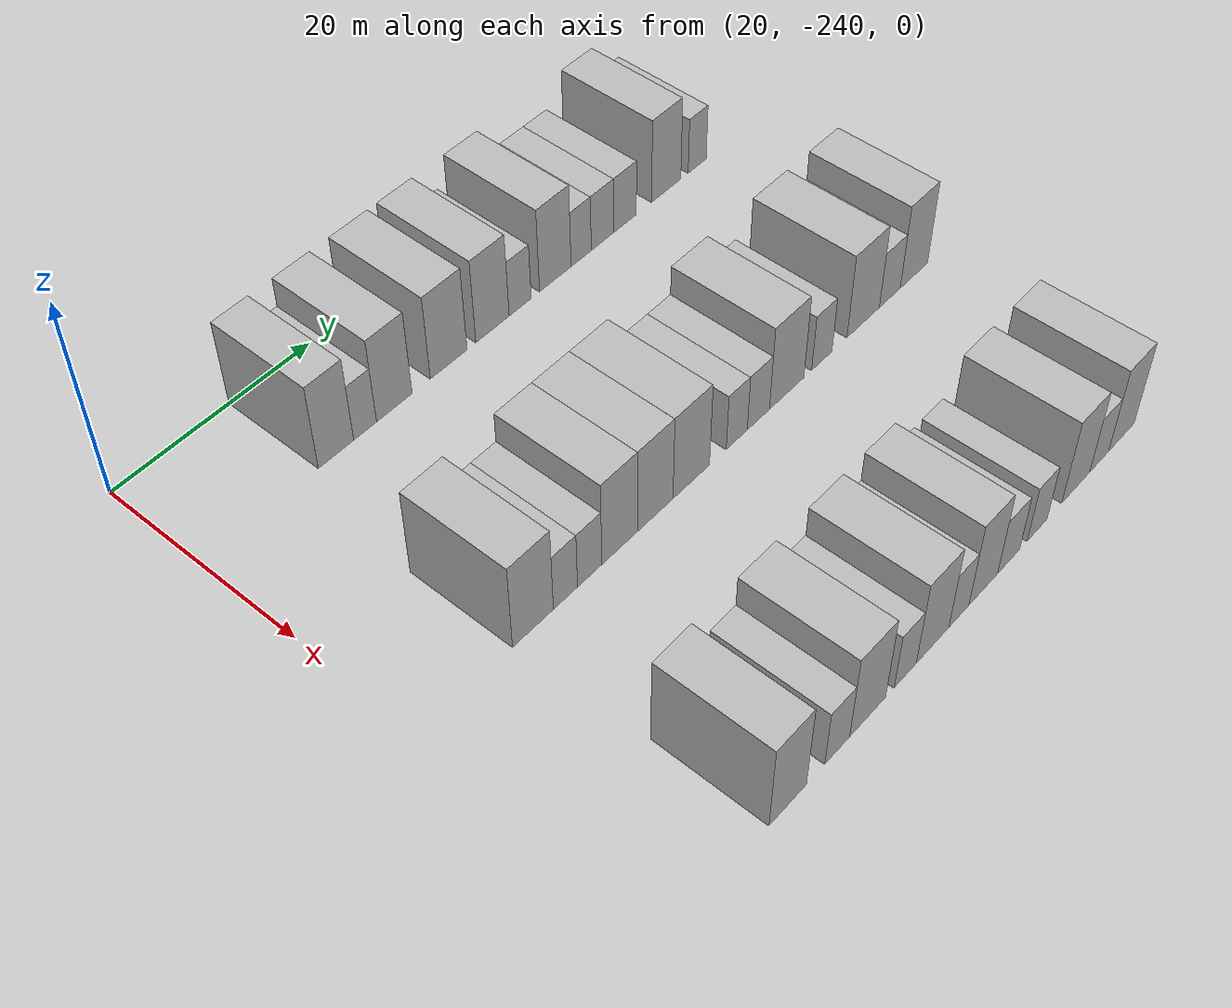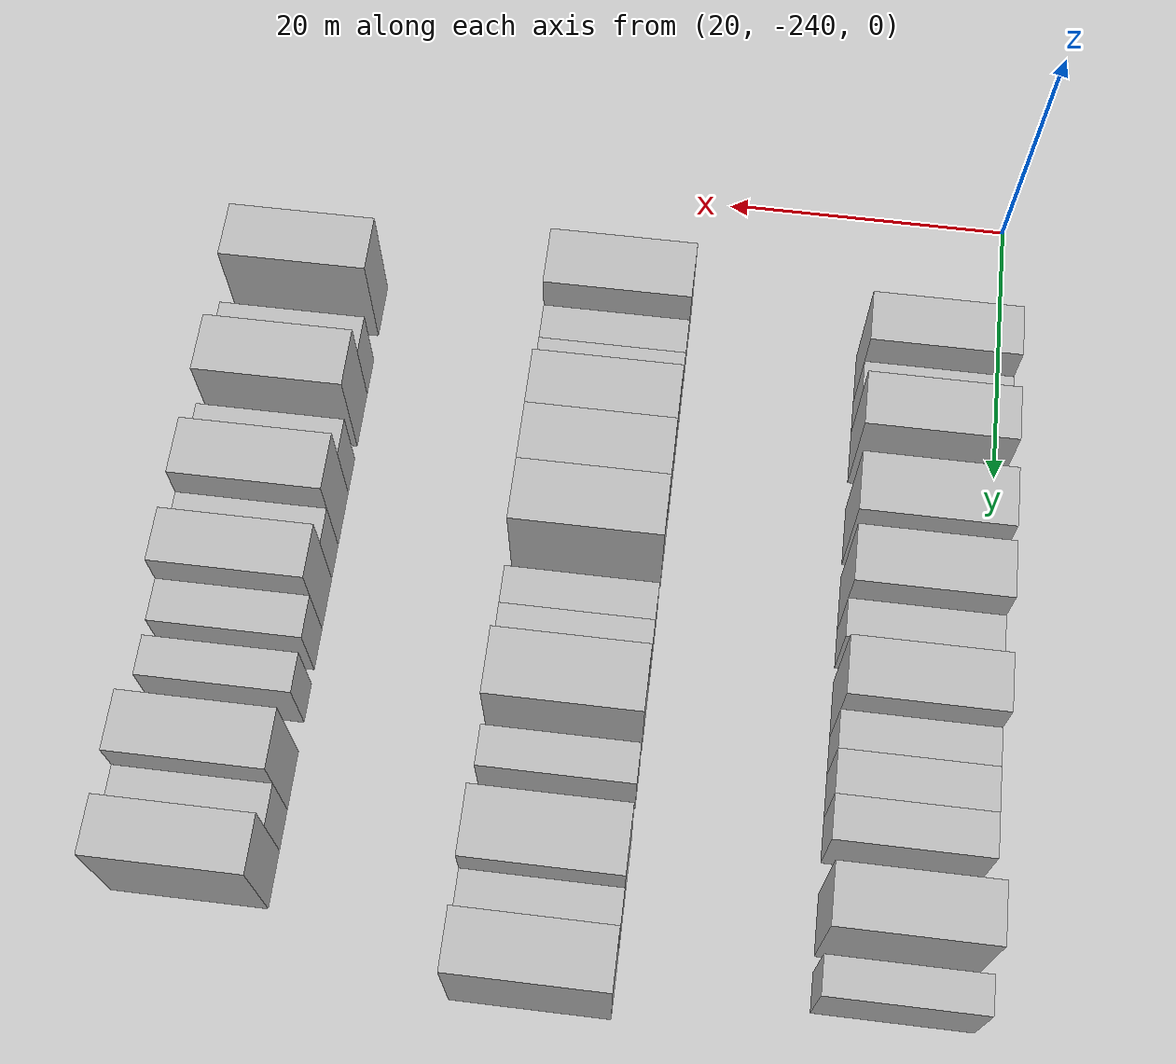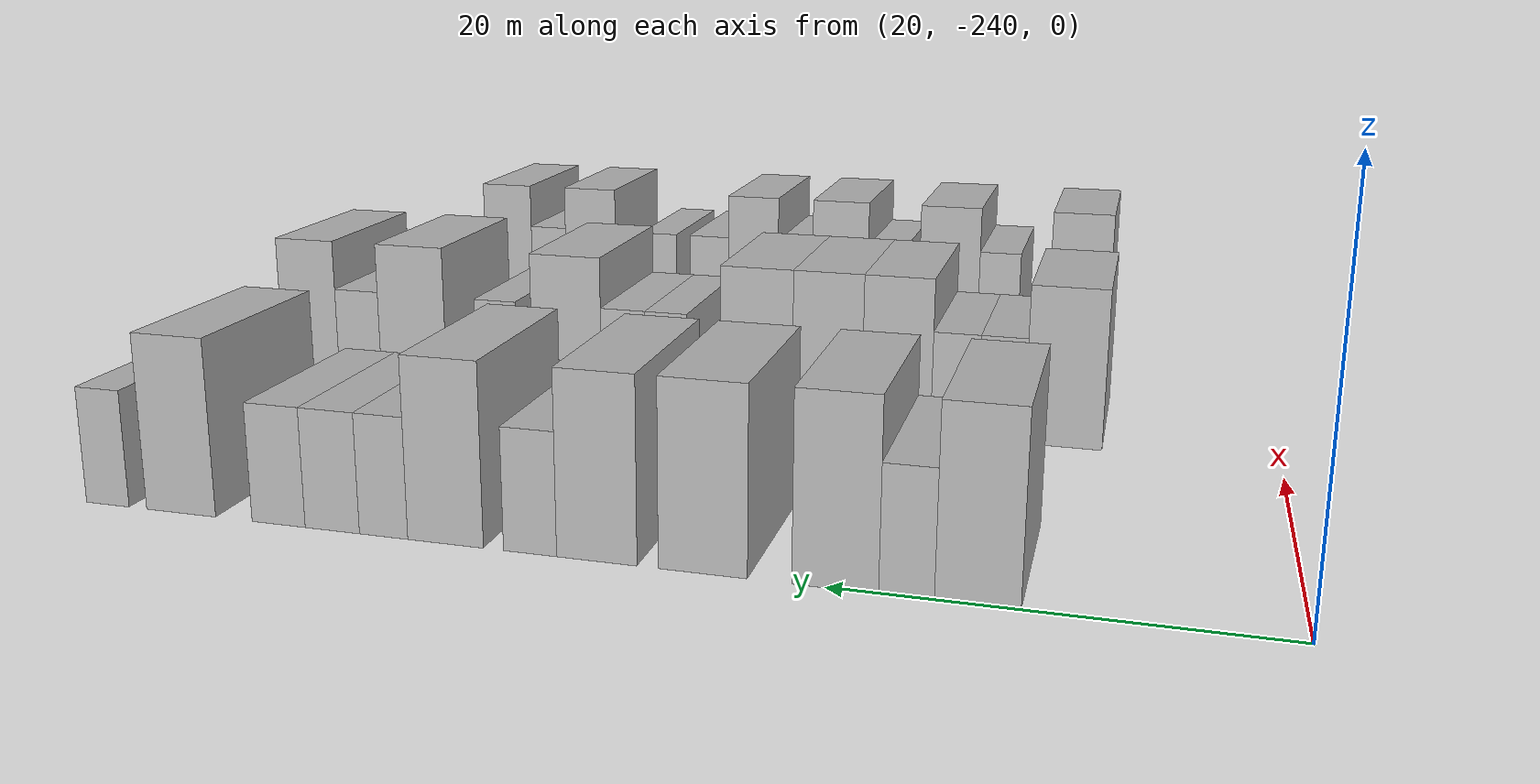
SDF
<sdf version="1.6">
 <world name="default">
  <model name="building_39">
   <static>1</static>
   <pose>25.0000 -226.5575 0 0.000000 0.000000 0.000000</pose>
   <link name="link">
    <pose>0 0 4.50 0 0 0</pose>
    <collision name="collision"><geometry><box><size>10.0000 3.6618 9.0000</size></box></geometry></collision>
    <visual name="visual">
     <cast_shadows>0</cast_shadows>
     <geometry><box><size>10.0000 3.6618 9.0000</size></box></geometry>
     <material>
      <script>
       <uri>model://HANNAS_wall/materials/scripts</uri>
       <uri>model://HANNAS_wall/materials/textures</uri>
       <name>vrc/HANNAS_wall</name>
      </script>
     </material>
    </visual>
   </link>
  </model>
  <model name="building_40">
   <static>1</static>
   <pose>25.0000 -223.5219 0 0.000000 0.000000 0.000000</pose>
   <link name="link">
    <pose>0 0 3.00 0 0 0</pose>
    <collision name="collision"><geometry><box><size>10.0000 2.4094 6.0000</size></box></geometry></collision>
    <visual name="visual">
     <cast_shadows>0</cast_shadows>
     <geometry><box><size>10.0000 2.4094 6.0000</size></box></geometry>
     <material>
      <script>
       <uri>model://HANNAS_wall/materials/scripts</uri>
       <uri>model://HANNAS_wall/materials/textures</uri>
       <name>vrc/HANNAS_wall</name>
      </script>
     </material>
    </visual>
   </link>
  </model>
  <model name="building_41">
   <static>1</static>
   <pose>25.0000 -220.3961 0 0.000000 0.000000 0.000000</pose>
   <link name="link">
    <pose>0 0 4.50 0 0 0</pose>
    <collision name="collision"><geometry><box><size>10.0000 3.8420 9.0000</size></box></geometry></collision>
    <visual name="visual">
     <cast_shadows>0</cast_shadows>
     <geometry><box><size>10.0000 3.8420 9.0000</size></box></geometry>
     <material>
      <script>
       <uri>model://HANNAS_wall/materials/scripts</uri>
       <uri>model://HANNAS_wall/materials/textures</uri>
       <name>vrc/HANNAS_wall</name>
      </script>
     </material>
    </visual>
   </link>
  </model>
  <model name="building_42">
   <static>1</static>
   <pose>25.0000 -214.4099 0 0.000000 0.000000 0.000000</pose>
   <link name="link">
    <pose>0 0 4.50 0 0 0</pose>
    <collision name="collision"><geometry><box><size>10.0000 4.1304 9.0000</size></box></geometry></collision>
    <visual name="visual">
     <cast_shadows>0</cast_shadows>
     <geometry><box><size>10.0000 4.1304 9.0000</size></box></geometry>
     <material>
      <script>
       <uri>model://HANNAS_wall/materials/scripts</uri>
       <uri>model://HANNAS_wall/materials/textures</uri>
       <name>vrc/HANNAS_wall</name>
      </script>
     </material>
    </visual>
   </link>
  </model>
  <model name="building_43">
   <static>1</static>
   <pose>25.0000 -209.4116 0 0.000000 0.000000 0.000000</pose>
   <link name="link">
    <pose>0 0 4.50 0 0 0</pose>
    <collision name="collision"><geometry><box><size>10.0000 3.8663 9.0000</size></box></geometry></collision>
    <visual name="visual">
     <cast_shadows>0</cast_shadows>
     <geometry><box><size>10.0000 3.8663 9.0000</size></box></geometry>
     <material>
      <script>
       <uri>model://HANNAS_wall/materials/scripts</uri>
       <uri>model://HANNAS_wall/materials/textures</uri>
       <name>vrc/HANNAS_wall</name>
      </script>
     </material>
    </visual>
   </link>
  </model>
  <model name="building_44">
   <static>1</static>
   <pose>25.0000 -206.1708 0 0.000000 0.000000 0.000000</pose>
   <link name="link">
    <pose>0 0 3.00 0 0 0</pose>
    <collision name="collision"><geometry><box><size>10.0000 2.6153 6.0000</size></box></geometry></collision>
    <visual name="visual">
     <cast_shadows>0</cast_shadows>
     <geometry><box><size>10.0000 2.6153 6.0000</size></box></geometry>
     <material>
      <script>
       <uri>model://HANNAS_wall/materials/scripts</uri>
       <uri>model://HANNAS_wall/materials/textures</uri>
       <name>vrc/HANNAS_wall</name>
      </script>
     </material>
    </visual>
   </link>
  </model>
  <model name="building_45">
   <static>1</static>
   <pose>25.0000 -201.9423 0 0.000000 0.000000 0.000000</pose>
   <link name="link">
    <pose>0 0 4.50 0 0 0</pose>
    <collision name="collision"><geometry><box><size>10.0000 3.8416 9.0000</size></box></geometry></collision>
    <visual name="visual">
     <cast_shadows>0</cast_shadows>
     <geometry><box><size>10.0000 3.8416 9.0000</size></box></geometry>
     <material>
      <script>
       <uri>model://HANNAS_wall/materials/scripts</uri>
       <uri>model://HANNAS_wall/materials/textures</uri>
       <name>vrc/HANNAS_wall</name>
      </script>
     </material>
    </visual>
   </link>
  </model>
  <model name="building_46">
   <static>1</static>
   <pose>25.0000 -198.7667 0 0.000000 0.000000 0.000000</pose>
   <link name="link">
    <pose>0 0 3.00 0 0 0</pose>
    <collision name="collision"><geometry><box><size>10.0000 2.5095 6.0000</size></box></geometry></collision>
    <visual name="visual">
     <cast_shadows>0</cast_shadows>
     <geometry><box><size>10.0000 2.5095 6.0000</size></box></geometry>
     <material>
      <script>
       <uri>model://HANNAS_wall/materials/scripts</uri>
       <uri>model://HANNAS_wall/materials/textures</uri>
       <name>vrc/HANNAS_wall</name>
      </script>
     </material>
    </visual>
   </link>
  </model>
  <model name="building_47">
   <static>1</static>
   <pose>25.0000 -196.0761 0 0.000000 0.000000 0.000000</pose>
   <link name="link">
    <pose>0 0 3.00 0 0 0</pose>
    <collision name="collision"><geometry><box><size>10.0000 2.8717 6.0000</size></box></geometry></collision>
    <visual name="visual">
     <cast_shadows>0</cast_shadows>
     <geometry><box><size>10.0000 2.8717 6.0000</size></box></geometry>
     <material>
      <script>
       <uri>model://HANNAS_wall/materials/scripts</uri>
       <uri>model://HANNAS_wall/materials/textures</uri>
       <name>vrc/HANNAS_wall</name>
      </script>
     </material>
    </visual>
   </link>
  </model>
  <model name="building_48">
   <static>1</static>
   <pose>25.0000 -193.2054 0 0.000000 0.000000 0.000000</pose>
   <link name="link">
    <pose>0 0 3.00 0 0 0</pose>
    <collision name="collision"><geometry><box><size>10.0000 2.8697 6.0000</size></box></geometry></collision>
    <visual name="visual">
     <cast_shadows>0</cast_shadows>
     <geometry><box><size>10.0000 2.8697 6.0000</size></box></geometry>
     <material>
      <script>
       <uri>model://HANNAS_wall/materials/scripts</uri>
       <uri>model://HANNAS_wall/materials/textures</uri>
       <name>vrc/HANNAS_wall</name>
      </script>
     </material>
    </visual>
   </link>
  </model>
  <model name="building_49">
   <static>1</static>
   <pose>25.0000 -187.8356 0 0.000000 0.000000 0.000000</pose>
   <link name="link">
    <pose>0 0 4.50 0 0 0</pose>
    <collision name="collision"><geometry><box><size>10.0000 3.8700 9.0000</size></box></geometry></collision>
    <visual name="visual">
     <cast_shadows>0</cast_shadows>
     <geometry><box><size>10.0000 3.8700 9.0000</size></box></geometry>
     <material>
      <script>
       <uri>model://HANNAS_wall/materials/scripts</uri>
       <uri>model://HANNAS_wall/materials/textures</uri>
       <name>vrc/HANNAS_wall</name>
      </script>
     </material>
    </visual>
   </link>
  </model>
  <model name="building_50">
   <static>1</static>
   <pose>25.0000 -183.6765 0 0.000000 0.000000 0.000000</pose>
   <link name="link">
    <pose>0 0 3.00 0 0 0</pose>
    <collision name="collision"><geometry><box><size>10.0000 2.4484 6.0000</size></box></geometry></collision>
    <visual name="visual">
     <cast_shadows>0</cast_shadows>
     <geometry><box><size>10.0000 2.4484 6.0000</size></box></geometry>
     <material>
      <script>
       <uri>model://HANNAS_wall/materials/scripts</uri>
       <uri>model://HANNAS_wall/materials/textures</uri>
       <name>vrc/HANNAS_wall</name>
      </script>
     </material>
    </visual>
   </link>
  </model>
  <model name="building_233">
   <static>1</static>
   <pose>47.0000 -228.6042 0 0.000000 0.000000 0.000000</pose>
   <link name="link">
    <pose>0 0 4.50 0 0 0</pose>
    <collision name="collision"><geometry><box><size>10.0000 4.2199 9.0000</size></box></geometry></collision>
    <visual name="visual">
     <cast_shadows>0</cast_shadows>
     <geometry><box><size>10.0000 4.2199 9.0000</size></box></geometry>
     <material>
      <script>
       <uri>model://HANNAS_wall/materials/scripts</uri>
       <uri>model://HANNAS_wall/materials/textures</uri>
       <name>vrc/HANNAS_wall</name>
      </script>
     </material>
    </visual>
   </link>
  </model>
  <model name="building_234">
   <static>1</static>
   <pose>47.0000 -225.2168 0 0.000000 0.000000 0.000000</pose>
   <link name="link">
    <pose>0 0 3.00 0 0 0</pose>
    <collision name="collision"><geometry><box><size>10.0000 2.5550 6.0000</size></box></geometry></collision>
    <visual name="visual">
     <cast_shadows>0</cast_shadows>
     <geometry><box><size>10.0000 2.5550 6.0000</size></box></geometry>
     <material>
      <script>
       <uri>model://HANNAS_wall/materials/scripts</uri>
       <uri>model://HANNAS_wall/materials/textures</uri>
       <name>vrc/HANNAS_wall</name>
      </script>
     </material>
    </visual>
   </link>
  </model>
  <model name="building_235">
   <static>1</static>
   <pose>47.0000 -222.6309 0 0.000000 0.000000 0.000000</pose>
   <link name="link">
    <pose>0 0 3.00 0 0 0</pose>
    <collision name="collision"><geometry><box><size>10.0000 2.6168 6.0000</size></box></geometry></collision>
    <visual name="visual">
     <cast_shadows>0</cast_shadows>
     <geometry><box><size>10.0000 2.6168 6.0000</size></box></geometry>
     <material>
      <script>
       <uri>model://HANNAS_wall/materials/scripts</uri>
       <uri>model://HANNAS_wall/materials/textures</uri>
       <name>vrc/HANNAS_wall</name>
      </script>
     </material>
    </visual>
   </link>
  </model>
  <model name="building_236">
   <static>1</static>
   <pose>47.0000 -219.3566 0 0.000000 0.000000 0.000000</pose>
   <link name="link">
    <pose>0 0 4.50 0 0 0</pose>
    <collision name="collision"><geometry><box><size>10.0000 3.9318 9.0000</size></box></geometry></collision>
    <visual name="visual">
     <cast_shadows>0</cast_shadows>
     <geometry><box><size>10.0000 3.9318 9.0000</size></box></geometry>
     <material>
      <script>
       <uri>model://HANNAS_wall/materials/scripts</uri>
       <uri>model://HANNAS_wall/materials/textures</uri>
       <name>vrc/HANNAS_wall</name>
      </script>
     </material>
    </visual>
   </link>
  </model>
  <model name="building_237">
   <static>1</static>
   <pose>47.0000 -215.3696 0 0.000000 0.000000 0.000000</pose>
   <link name="link">
    <pose>0 0 4.50 0 0 0</pose>
    <collision name="collision"><geometry><box><size>10.0000 4.0422 9.0000</size></box></geometry></collision>
    <visual name="visual">
     <cast_shadows>0</cast_shadows>
     <geometry><box><size>10.0000 4.0422 9.0000</size></box></geometry>
     <material>
      <script>
       <uri>model://HANNAS_wall/materials/scripts</uri>
       <uri>model://HANNAS_wall/materials/textures</uri>
       <name>vrc/HANNAS_wall</name>
      </script>
     </material>
    </visual>
   </link>
  </model>
  <model name="building_238">
   <static>1</static>
   <pose>47.0000 -211.2126 0 0.000000 0.000000 0.000000</pose>
   <link name="link">
    <pose>0 0 4.50 0 0 0</pose>
    <collision name="collision"><geometry><box><size>10.0000 4.2717 9.0000</size></box></geometry></collision>
    <visual name="visual">
     <cast_shadows>0</cast_shadows>
     <geometry><box><size>10.0000 4.2717 9.0000</size></box></geometry>
     <material>
      <script>
       <uri>model://HANNAS_wall/materials/scripts</uri>
       <uri>model://HANNAS_wall/materials/textures</uri>
       <name>vrc/HANNAS_wall</name>
      </script>
     </material>
    </visual>
   </link>
  </model>
  <model name="building_239">
   <static>1</static>
   <pose>47.0000 -205.8019 0 0.000000 0.000000 0.000000</pose>
   <link name="link">
    <pose>0 0 3.00 0 0 0</pose>
    <collision name="collision"><geometry><box><size>10.0000 2.5496 6.0000</size></box></geometry></collision>
    <visual name="visual">
     <cast_shadows>0</cast_shadows>
     <geometry><box><size>10.0000 2.5496 6.0000</size></box></geometry>
     <material>
      <script>
       <uri>model://HANNAS_wall/materials/scripts</uri>
       <uri>model://HANNAS_wall/materials/textures</uri>
       <name>vrc/HANNAS_wall</name>
      </script>
     </material>
    </visual>
   </link>
  </model>
  <model name="building_240">
   <static>1</static>
   <pose>47.0000 -203.1543 0 0.000000 0.000000 0.000000</pose>
   <link name="link">
    <pose>0 0 3.00 0 0 0</pose>
    <collision name="collision"><geometry><box><size>10.0000 2.7456 6.0000</size></box></geometry></collision>
    <visual name="visual">
     <cast_shadows>0</cast_shadows>
     <geometry><box><size>10.0000 2.7456 6.0000</size></box></geometry>
     <material>
      <script>
       <uri>model://HANNAS_wall/materials/scripts</uri>
       <uri>model://HANNAS_wall/materials/textures</uri>
       <name>vrc/HANNAS_wall</name>
      </script>
     </material>
    </visual>
   </link>
  </model>
  <model name="building_241">
   <static>1</static>
   <pose>47.0000 -199.5931 0 0.000000 0.000000 0.000000</pose>
   <link name="link">
    <pose>0 0 4.50 0 0 0</pose>
    <collision name="collision"><geometry><box><size>10.0000 4.3769 9.0000</size></box></geometry></collision>
    <visual name="visual">
     <cast_shadows>0</cast_shadows>
     <geometry><box><size>10.0000 4.3769 9.0000</size></box></geometry>
     <material>
      <script>
       <uri>model://HANNAS_wall/materials/scripts</uri>
       <uri>model://HANNAS_wall/materials/textures</uri>
       <name>vrc/HANNAS_wall</name>
      </script>
     </material>
    </visual>
   </link>
  </model>
  <model name="building_242">
   <static>1</static>
   <pose>47.0000 -195.0827 0 0.000000 0.000000 0.000000</pose>
   <link name="link">
    <pose>0 0 3.00 0 0 0</pose>
    <collision name="collision"><geometry><box><size>10.0000 2.6437 6.0000</size></box></geometry></collision>
    <visual name="visual">
     <cast_shadows>0</cast_shadows>
     <geometry><box><size>10.0000 2.6437 6.0000</size></box></geometry>
     <material>
      <script>
       <uri>model://HANNAS_wall/materials/scripts</uri>
       <uri>model://HANNAS_wall/materials/textures</uri>
       <name>vrc/HANNAS_wall</name>
      </script>
     </material>
    </visual>
   </link>
  </model>
  <model name="building_243">
   <static>1</static>
   <pose>47.0000 -189.5637 0 0.000000 0.000000 0.000000</pose>
   <link name="link">
    <pose>0 0 4.50 0 0 0</pose>
    <collision name="collision"><geometry><box><size>10.0000 4.3944 9.0000</size></box></geometry></collision>
    <visual name="visual">
     <cast_shadows>0</cast_shadows>
     <geometry><box><size>10.0000 4.3944 9.0000</size></box></geometry>
     <material>
      <script>
       <uri>model://HANNAS_wall/materials/scripts</uri>
       <uri>model://HANNAS_wall/materials/textures</uri>
       <name>vrc/HANNAS_wall</name>
      </script>
     </material>
    </visual>
   </link>
  </model>
  <model name="building_244">
   <static>1</static>
   <pose>47.0000 -185.9221 0 0.000000 0.000000 0.000000</pose>
   <link name="link">
    <pose>0 0 3.00 0 0 0</pose>
    <collision name="collision"><geometry><box><size>10.0000 2.8888 6.0000</size></box></geometry></collision>
    <visual name="visual">
     <cast_shadows>0</cast_shadows>
     <geometry><box><size>10.0000 2.8888 6.0000</size></box></geometry>
     <material>
      <script>
       <uri>model://HANNAS_wall/materials/scripts</uri>
       <uri>model://HANNAS_wall/materials/textures</uri>
       <name>vrc/HANNAS_wall</name>
      </script>
     </material>
    </visual>
   </link>
  </model>
  <model name="building_245">
   <static>1</static>
   <pose>47.0000 -182.5445 0 0.000000 0.000000 0.000000</pose>
   <link name="link">
    <pose>0 0 4.50 0 0 0</pose>
    <collision name="collision"><geometry><box><size>10.0000 3.8663 9.0000</size></box></geometry></collision>
    <visual name="visual">
     <cast_shadows>0</cast_shadows>
     <geometry><box><size>10.0000 3.8663 9.0000</size></box></geometry>
     <material>
      <script>
       <uri>model://HANNAS_wall/materials/scripts</uri>
       <uri>model://HANNAS_wall/materials/textures</uri>
       <name>vrc/HANNAS_wall</name>
      </script>
     </material>
    </visual>
   </link>
  </model>
  <model name="building_414">
   <static>1</static>
   <pose>69.0000 -228.0803 0 0.000000 0.000000 0.000000</pose>
   <link name="link">
    <pose>0 0 4.50 0 0 0</pose>
    <collision name="collision"><geometry><box><size>10.0000 3.9993 9.0000</size></box></geometry></collision>
    <visual name="visual">
     <cast_shadows>0</cast_shadows>
     <geometry><box><size>10.0000 3.9993 9.0000</size></box></geometry>
     <material>
      <script>
       <uri>model://HANNAS_wall/materials/scripts</uri>
       <uri>model://HANNAS_wall/materials/textures</uri>
       <name>vrc/HANNAS_wall</name>
      </script>
     </material>
    </visual>
   </link>
  </model>
  <model name="building_415">
   <static>1</static>
   <pose>69.0000 -222.6998 0 0.000000 0.000000 0.000000</pose>
   <link name="link">
    <pose>0 0 3.00 0 0 0</pose>
    <collision name="collision"><geometry><box><size>10.0000 2.7617 6.0000</size></box></geometry></collision>
    <visual name="visual">
     <cast_shadows>0</cast_shadows>
     <geometry><box><size>10.0000 2.7617 6.0000</size></box></geometry>
     <material>
      <script>
       <uri>model://HANNAS_wall/materials/scripts</uri>
       <uri>model://HANNAS_wall/materials/textures</uri>
       <name>vrc/HANNAS_wall</name>
      </script>
     </material>
    </visual>
   </link>
  </model>
  <model name="building_416">
   <static>1</static>
   <pose>69.0000 -219.2652 0 0.000000 0.000000 0.000000</pose>
   <link name="link">
    <pose>0 0 4.50 0 0 0</pose>
    <collision name="collision"><geometry><box><size>10.0000 4.1074 9.0000</size></box></geometry></collision>
    <visual name="visual">
     <cast_shadows>0</cast_shadows>
     <geometry><box><size>10.0000 4.1074 9.0000</size></box></geometry>
     <material>
      <script>
       <uri>model://HANNAS_wall/materials/scripts</uri>
       <uri>model://HANNAS_wall/materials/textures</uri>
       <name>vrc/HANNAS_wall</name>
      </script>
     </material>
    </visual>
   </link>
  </model>
  <model name="building_417">
   <static>1</static>
   <pose>69.0000 -214.9117 0 0.000000 0.000000 0.000000</pose>
   <link name="link">
    <pose>0 0 3.00 0 0 0</pose>
    <collision name="collision"><geometry><box><size>10.0000 2.5997 6.0000</size></box></geometry></collision>
    <visual name="visual">
     <cast_shadows>0</cast_shadows>
     <geometry><box><size>10.0000 2.5997 6.0000</size></box></geometry>
     <material>
      <script>
       <uri>model://HANNAS_wall/materials/scripts</uri>
       <uri>model://HANNAS_wall/materials/textures</uri>
       <name>vrc/HANNAS_wall</name>
      </script>
     </material>
    </visual>
   </link>
  </model>
  <model name="building_418">
   <static>1</static>
   <pose>69.0000 -211.6398 0 0.000000 0.000000 0.000000</pose>
   <link name="link">
    <pose>0 0 4.50 0 0 0</pose>
    <collision name="collision"><geometry><box><size>10.0000 3.9440 9.0000</size></box></geometry></collision>
    <visual name="visual">
     <cast_shadows>0</cast_shadows>
     <geometry><box><size>10.0000 3.9440 9.0000</size></box></geometry>
     <material>
      <script>
       <uri>model://HANNAS_wall/materials/scripts</uri>
       <uri>model://HANNAS_wall/materials/textures</uri>
       <name>vrc/HANNAS_wall</name>
      </script>
     </material>
    </visual>
   </link>
  </model>
  <model name="building_419">
   <static>1</static>
   <pose>69.0000 -208.4242 0 0.000000 0.000000 0.000000</pose>
   <link name="link">
    <pose>0 0 3.00 0 0 0</pose>
    <collision name="collision"><geometry><box><size>10.0000 2.4872 6.0000</size></box></geometry></collision>
    <visual name="visual">
     <cast_shadows>0</cast_shadows>
     <geometry><box><size>10.0000 2.4872 6.0000</size></box></geometry>
     <material>
      <script>
       <uri>model://HANNAS_wall/materials/scripts</uri>
       <uri>model://HANNAS_wall/materials/textures</uri>
       <name>vrc/HANNAS_wall</name>
      </script>
     </material>
    </visual>
   </link>
  </model>
  <model name="building_420">
   <static>1</static>
   <pose>69.0000 -205.3602 0 0.000000 0.000000 0.000000</pose>
   <link name="link">
    <pose>0 0 4.50 0 0 0</pose>
    <collision name="collision"><geometry><box><size>10.0000 3.6410 9.0000</size></box></geometry></collision>
    <visual name="visual">
     <cast_shadows>0</cast_shadows>
     <geometry><box><size>10.0000 3.6410 9.0000</size></box></geometry>
     <material>
      <script>
       <uri>model://HANNAS_wall/materials/scripts</uri>
       <uri>model://HANNAS_wall/materials/textures</uri>
       <name>vrc/HANNAS_wall</name>
      </script>
     </material>
    </visual>
   </link>
  </model>
  <model name="building_421">
   <static>1</static>
   <pose>69.0000 -202.1025 0 0.000000 0.000000 0.000000</pose>
   <link name="link">
    <pose>0 0 3.00 0 0 0</pose>
    <collision name="collision"><geometry><box><size>10.0000 2.8744 6.0000</size></box></geometry></collision>
    <visual name="visual">
     <cast_shadows>0</cast_shadows>
     <geometry><box><size>10.0000 2.8744 6.0000</size></box></geometry>
     <material>
      <script>
       <uri>model://HANNAS_wall/materials/scripts</uri>
       <uri>model://HANNAS_wall/materials/textures</uri>
       <name>vrc/HANNAS_wall</name>
      </script>
     </material>
    </visual>
   </link>
  </model>
  <model name="building_422">
   <static>1</static>
   <pose>69.0000 -198.3391 0 0.000000 0.000000 0.000000</pose>
   <link name="link">
    <pose>0 0 3.00 0 0 0</pose>
    <collision name="collision"><geometry><box><size>10.0000 2.6523 6.0000</size></box></geometry></collision>
    <visual name="visual">
     <cast_shadows>0</cast_shadows>
     <geometry><box><size>10.0000 2.6523 6.0000</size></box></geometry>
     <material>
      <script>
       <uri>model://HANNAS_wall/materials/scripts</uri>
       <uri>model://HANNAS_wall/materials/textures</uri>
       <name>vrc/HANNAS_wall</name>
      </script>
     </material>
    </visual>
   </link>
  </model>
  <model name="building_423">
   <static>1</static>
   <pose>69.0000 -193.0839 0 0.000000 0.000000 0.000000</pose>
   <link name="link">
    <pose>0 0 4.50 0 0 0</pose>
    <collision name="collision"><geometry><box><size>10.0000 3.8582 9.0000</size></box></geometry></collision>
    <visual name="visual">
     <cast_shadows>0</cast_shadows>
     <geometry><box><size>10.0000 3.8582 9.0000</size></box></geometry>
     <material>
      <script>
       <uri>model://HANNAS_wall/materials/scripts</uri>
       <uri>model://HANNAS_wall/materials/textures</uri>
       <name>vrc/HANNAS_wall</name>
      </script>
     </material>
    </visual>
   </link>
  </model>
  <model name="building_424">
   <static>1</static>
   <pose>69.0000 -189.8160 0 0.000000 0.000000 0.000000</pose>
   <link name="link">
    <pose>0 0 3.00 0 0 0</pose>
    <collision name="collision"><geometry><box><size>10.0000 2.6776 6.0000</size></box></geometry></collision>
    <visual name="visual">
     <cast_shadows>0</cast_shadows>
     <geometry><box><size>10.0000 2.6776 6.0000</size></box></geometry>
     <material>
      <script>
       <uri>model://HANNAS_wall/materials/scripts</uri>
       <uri>model://HANNAS_wall/materials/textures</uri>
       <name>vrc/HANNAS_wall</name>
      </script>
     </material>
    </visual>
   </link>
  </model>
  <model name="building_425">
   <static>1</static>
   <pose>69.0000 -186.6248 0 0.000000 0.000000 0.000000</pose>
   <link name="link">
    <pose>0 0 4.50 0 0 0</pose>
    <collision name="collision"><geometry><box><size>10.0000 3.7048 9.0000</size></box></geometry></collision>
    <visual name="visual">
     <cast_shadows>0</cast_shadows>
     <geometry><box><size>10.0000 3.7048 9.0000</size></box></geometry>
     <material>
      <script>
       <uri>model://HANNAS_wall/materials/scripts</uri>
       <uri>model://HANNAS_wall/materials/textures</uri>
       <name>vrc/HANNAS_wall</name>
      </script>
     </material>
    </visual>
   </link>
  </model>
 </world>
</sdf>
